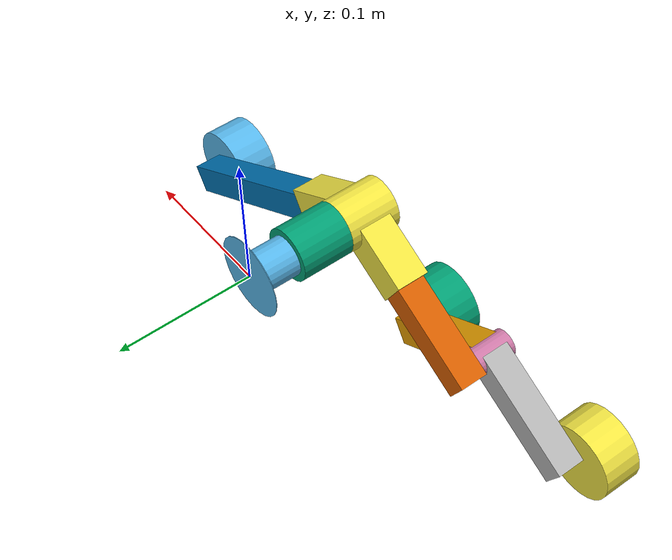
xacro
<?xml version="1.0"?>
<!-- Content in right_xacro.xacro -->
<robot xmlns:xacro="http://www.ros.org/wiki/xacro" name="minesweeper_right">
  <link name="right_base_link"/>

  <xacro:property name="r_circular_plate_length" value="0.0005"/>
  <xacro:property name="r_circular_plate_radius" value="0.03"/>

  <xacro:property name="r_extruded_rod_radius" value="0.015"/>
  <xacro:property name="r_extruded_rod_length" value="0.1"/>

  <link name = "r_circular_plate_link">
    <visual>
        <geometry>
            <cylinder length="${r_circular_plate_length}" radius="${r_circular_plate_radius}"/>
        </geometry>
        <origin xyz = "0 0 0" rpy="${pi/2} 0 0"/>
    </visual>
    <visual>
        <geometry>
            <cylinder length="${r_extruded_rod_length}" radius="${r_extruded_rod_radius}"/>
        </geometry>
        <origin xyz = "0 ${-r_circular_plate_length - r_extruded_rod_length/2} 0" rpy = "${pi/2} 0 0"/>
    </visual>
  </link>

  <joint name="r_circular_plate_joint" type="fixed">
    <parent link="right_base_link"/>
    <child link="r_circular_plate_link"/>
  </joint>

  <xacro:property name="r_bracket_length" value="0.04"/>
  <xacro:property name="r_bracket_radius" value="0.02"/>
  <xacro:property name="r_bracket_offset" value="0.03"/>

  <link name="r_bracket_link">
    <visual>
        <geometry>
            <cylinder length = "${r_bracket_length}" radius="${r_bracket_radius}"/>
        </geometry>
        <origin xyz = "0 0 0" rpy="0 0 0"/>
    </visual>
  </link>

  <joint name="r_bracket_joint" type="fixed">
    <parent link ="r_circular_plate_link"/>
    <child link ="r_bracket_link"/>
    <origin xyz="0 ${-r_circular_plate_length/2 - r_bracket_offset - r_bracket_length/2} 0" rpy="${pi/2} 0 0"/>
  </joint>

  <xacro:property name="r_rot_bracket_length" value="0.04"/>
  <xacro:property name="r_rot_bracket_radius" value="0.02"/>
  <xacro:property name="r_leg_x" value="0.056"/>
  <xacro:property name="r_leg_y" value="0.0279"/>
  <xacro:property name="r_leg_z" value="0.0254"/>

  <link name = "r_rot_bracket_link">
    <visual>
        <geometry>
            <cylinder length = "${r_rot_bracket_length}" radius="${r_rot_bracket_radius}"/>
        </geometry>
        <origin xyz = "0 0 0" rpy="0 0 0"/>
    </visual>
    <visual>
      <geometry>
        <box size = "${r_leg_x} ${r_leg_y} ${r_leg_z}"/>
      </geometry>
      <origin xyz = "${r_leg_x/2} ${-r_leg_y/2} 0" rpy="0 0 ${-pi/6}"/>
    </visual>
    <visual>
      <geometry>
        <box size = "${r_leg_x} ${r_leg_y} ${r_leg_z}"/>
      </geometry>
      <origin xyz = "${-r_leg_x/2} ${-r_leg_y/2} 0" rpy="0 0 ${pi/6}"/>
    </visual>
  </link>

  <joint name="r_rot_bracket_joint" type="revolute">
    <parent link ="r_bracket_link"/>
    <child link ="r_rot_bracket_link"/>
    <origin xyz= "0 0 ${r_rot_bracket_length/2 + r_bracket_length/2}" rpy="0 0 0"/>
    <limit lower="-1.57" upper="1.57" effort="10" velocity="3"/>
  </joint>

  <xacro:property name="r_metal_leg_x" value="0.164"/>
  <xacro:property name="r_metal_leg_y" value="0.0218"/>
  <xacro:property name="r_metal_leg_z" value="0.0218"/>

  <link name="r_metal_leg_link">
    <visual>
      <geometry>
        <box size = "${r_metal_leg_x} ${r_metal_leg_y} ${r_metal_leg_z}"/>
      </geometry>
      <origin xyz = "0 0 0" rpy="0 0 0"/>
    </visual>
  </link>

  <joint name = "r_metal_leg_joint" type="fixed">
    <parent link = "r_rot_bracket_link"/>
    <child link = "r_metal_leg_link"/>
    <origin xyz = "${(r_metal_leg_x/2 + r_leg_x/2 + r_rot_bracket_radius + 0.01) *0.866 } ${-1*(r_metal_leg_x/2 + r_leg_x/2+ r_rot_bracket_radius+ 0.01) *0.5} 0" rpy = "0 0 ${-pi/6}"/>
  </joint>

  <xacro:property name="r_metal_leg_mirror_x" value="0.08"/>

  <link name="r_metal_leg_mirror_link">
    <visual>
      <geometry>
        <box size = "${r_metal_leg_mirror_x} ${r_metal_leg_y} ${r_metal_leg_z}"/>
      </geometry>
      <origin xyz = "0 0 0" rpy="0 0 0"/>
    </visual>
  </link>
  <joint name = "r_metal_leg_mirror_joint" type="fixed">
    <parent link = "r_rot_bracket_link"/>
    <child link = "r_metal_leg_mirror_link"/>
    <origin xyz = "${-1*(r_metal_leg_mirror_x/2 + r_leg_x/2 + r_rot_bracket_radius + 0.01) *0.866 } ${-1*(r_metal_leg_mirror_x/2 + r_leg_x/2+ r_rot_bracket_radius+ 0.01) *0.5} 0" rpy = "0 0 ${pi/6}"/>
  </joint>

  <xacro:property name="r_bjw_o_radius" value="0.0109"/>
  <xacro:property name="r_bjw_o_length" value="0.03"/>

  <link name="r_bjw_link">
    <visual>
      <geometry>
        <cylinder radius="${r_bjw_o_radius}" length="${r_bjw_o_length}"/>
      </geometry>
      <origin xyz="0 0 0" rpy="0 0 0"/>
    </visual>
  </link>

  <joint name="r_bjw_joint" type="revolute">
    <parent link="r_metal_leg_mirror_link"/>
    <child link="r_bjw_link"/>
    <origin xyz ="${-1*(r_metal_leg_mirror_x/2-r_bjw_o_radius)} 0 ${1*(r_metal_leg_z/2 + r_bjw_o_length/2)}" rpy="0 0 0"/>
    <limit lower="-1.57" upper="1.57" effort="10" velocity="3"/>
  </joint>

  <link name = "r_short_leg_link">
    <visual>
      <geometry>
        <box size="${r_metal_leg_x - r_metal_leg_mirror_x + r_bjw_o_radius} ${r_metal_leg_y} ${r_metal_leg_z}" rpy="0 0 0"/>
      </geometry>
      <origin xyz="0 0 0" rpy="0 0 0"/>
    </visual>
  </link>

  <joint name="r_short_leg_joint" type="fixed">
    <parent link="r_bjw_link"/>
    <child link="r_short_leg_link"/>
    <origin xyz="${-1*(r_metal_leg_x - r_metal_leg_mirror_x + r_bjw_o_radius)/2} 0 0" rpy="0 0 0"/>
  </joint>

    <link name = "r_short_leg_two_link">
    <visual>
      <geometry>
        <box size="${r_metal_leg_x - r_metal_leg_mirror_x + r_bjw_o_radius} ${r_metal_leg_y} ${r_metal_leg_z}" rpy="0 0 0"/>
      </geometry>
      <origin xyz="${(r_metal_leg_x - r_metal_leg_mirror_x + r_bjw_o_radius)/2} 0 0" rpy="0 0 0"/>
    </visual>
  </link>

  <joint name="r_short_leg_two_joint" type="fixed">
    <parent link="r_bjw_link"/>
    <child link="r_short_leg_two_link"/>
    <origin xyz="0 0 0" rpy="0 0 ${-pi/3}"/>
  </joint>

  <xacro:property name="r_wheel_length" value="0.03"/>
  <xacro:property name="r_wheel_radius" value="0.03"/>

  <link name="r_wheel_one">
    <visual>
      <geometry>
        <cylinder length="${r_wheel_length}" radius="${r_wheel_radius}"/>
      </geometry>
      <origin xyz="0 0 0" rpy="0 0 0"/>
    </visual>
  </link>

  <joint name="r_wheel_one_joint" type="revolute">
    <parent link="r_metal_leg_link"/>
    <child link="r_wheel_one"/>
    <origin xyz="${r_metal_leg_x/2} 0 ${1*(r_metal_leg_z/2 + r_wheel_length/2)}" rpy="0 0 0"/>
    <limit lower="-1.57" upper="1.57" effort="10" velocity="3"/>
  </joint>

  <link name="r_wheel_two">
    <visual>
      <geometry>
        <cylinder length="${r_wheel_length}" radius="${r_wheel_radius}"/>
      </geometry>
      <origin xyz="0 0 0" rpy="0 0 0"/>
    </visual>
  </link>

  <joint name="r_wheel_two_joint" type="revolute">
    <parent link="r_short_leg_two_link"/>
    <child link="r_wheel_two"/>
    <origin xyz="${(r_metal_leg_x - r_metal_leg_mirror_x + r_bjw_o_radius)} 0 ${1*(r_metal_leg_z/2 + r_wheel_length/2)}" rpy="0 0 0"/>
    <limit lower="-1.57" upper="1.57" effort="10" velocity="3"/>
  </joint>

  <link name="r_wheel_three">
    <visual>
      <geometry>
        <cylinder length="${r_wheel_length}" radius="${r_wheel_radius}"/>
      </geometry>
      <origin xyz="0 0 0" rpy="0 0 0"/>
    </visual>
  </link>

  <joint name="r_wheel_three_joint" type="revolute">
    <parent link="r_short_leg_link"/>
    <child link="r_wheel_three"/>
    <origin xyz="${-1*(r_metal_leg_x - r_metal_leg_mirror_x + r_bjw_o_radius)/2} 0 ${1*(r_metal_leg_z/2 + r_wheel_length/2)}" rpy="0 0 0"/>
    <limit lower="-1.57" upper="1.57" effort="10" velocity="3"/>
  </joint>

</robot>
